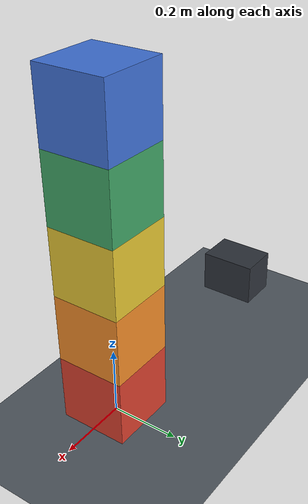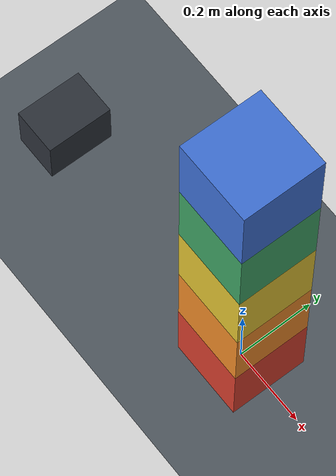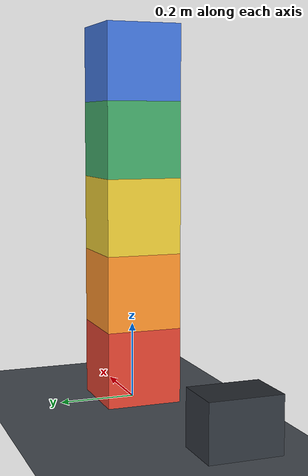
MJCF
<mujoco model="five_block_stack">
  <compiler angle="radian"/>
  <option timestep="0.002" gravity="0 0 -9.81" integrator="implicitfast" solver="Newton" iterations="60" cone="elliptic"/>

  <visual>
    <global azimuth="135" elevation="-20"/>
    <headlight ambient="0.35 0.35 0.35" diffuse="0.7 0.7 0.7" specular="0.2 0.2 0.2"/>
  </visual>

  <worldbody>
    <light name="overhead" pos="-2 -3 4" dir="0.4 0.5 -1" directional="true"/>
    <camera name="overview" pos="2.8 -3.5 2.0" xyaxes="0.781 0.625 0 -0.251 0.314 0.916"/>

    <geom name="floor" type="plane" pos="0 0 0" size="4 4 0.1" friction="1.0 0.005 0.0001" solref="0.01 1" solimp="0.95 0.99 0.001" rgba="0.32 0.35 0.38 1"/>

    <body name="block1" pos="0 0 0.10">
      <freejoint name="block1_free"/>
      <geom name="block1_geom" type="box" size="0.10 0.10 0.10" mass="0.5" friction="0.9 0.005 0.0001" solref="0.01 1" solimp="0.95 0.99 0.001" rgba="0.85 0.25 0.18 1"/>
    </body>

    <body name="block2" pos="0 0 0.30">
      <freejoint name="block2_free"/>
      <geom name="block2_geom" type="box" size="0.10 0.10 0.10" mass="0.5" friction="0.9 0.005 0.0001" solref="0.01 1" solimp="0.95 0.99 0.001" rgba="0.95 0.55 0.16 1"/>
    </body>

    <body name="block3" pos="0 0 0.50">
      <freejoint name="block3_free"/>
      <geom name="block3_geom" type="box" size="0.10 0.10 0.10" mass="0.5" friction="0.9 0.005 0.0001" solref="0.01 1" solimp="0.95 0.99 0.001" rgba="0.90 0.78 0.20 1"/>
    </body>

    <body name="block4" pos="0 0 0.70">
      <freejoint name="block4_free"/>
      <geom name="block4_geom" type="box" size="0.10 0.10 0.10" mass="0.5" friction="0.9 0.005 0.0001" solref="0.01 1" solimp="0.95 0.99 0.001" rgba="0.25 0.65 0.40 1"/>
    </body>

    <body name="block5" pos="0 0 0.90">
      <freejoint name="block5_free"/>
      <geom name="block5_geom" type="box" size="0.10 0.10 0.10" mass="0.5" friction="0.9 0.005 0.0001" solref="0.01 1" solimp="0.95 0.99 0.001" rgba="0.25 0.45 0.85 1"/>
    </body>

    <!-- The guided pusher crosses the initial gap before contacting only block1. -->
    <body name="pusher" pos="-0.65 0 0.125">
      <joint name="pusher_slide" type="slide" axis="1 0 0" limited="true" range="0 0.95" damping="2" armature="0.01"/>
      <geom name="pusher_geom" type="box" size="0.06 0.085 0.065" mass="5" friction="0.3 0.005 0.0001" solref="0.01 1" solimp="0.95 0.99 0.001" rgba="0.18 0.20 0.23 1"/>
    </body>
  </worldbody>

  <actuator>
    <velocity name="push" joint="pusher_slide" kv="200" ctrllimited="true" ctrlrange="0 1" forcelimited="true" forcerange="-100 100"/>
  </actuator>

  <keyframe>
    <key name="start" ctrl="0.7"/>
  </keyframe>
</mujoco>
